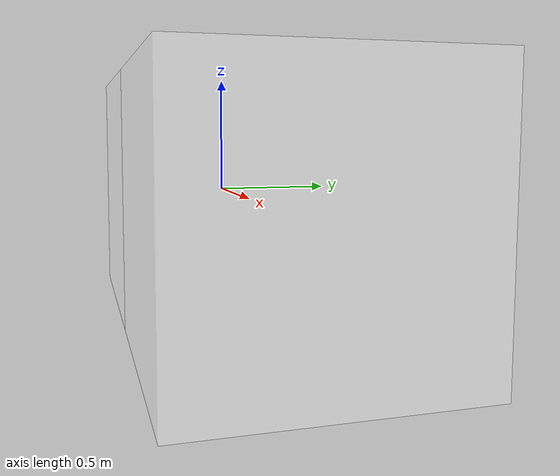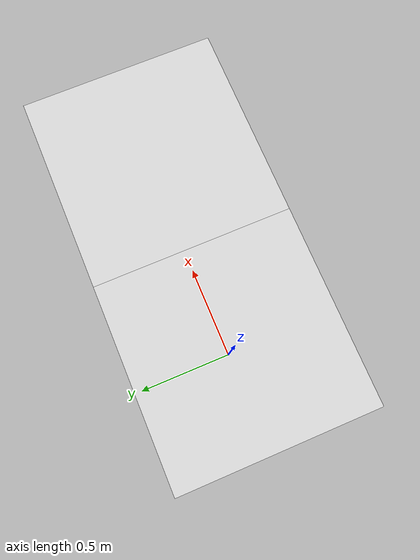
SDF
<?xml version="1.0" encoding="UTF-8"?>
<sdf version="1.6">
    <model name="modelo">
        <link name="main_body">
            <pose>0 0 0 0 -0 0</pose>
            <inertial>
                <mass>1.49981</mass>
                <pose>0 0 0 0 -0 0</pose>
                <inertia>
                    <ixx>0.0478834</ixx>
                    <ixy>0</ixy>
                    <ixz>0</ixz>
                    <iyy>0.0227521</iyy>
                    <iyz>0</iyz>
                    <izz>0.0606231</izz>
                </inertia>
            </inertial>
            <visual name="main_body_visual">
                <pose>0 0 0 0 -0 0</pose>
                <geometry>
                    <box>
                        <size>1 1 1</size>
                    </box>
                </geometry>
                <material>
                    <ambient>1 1 1 0.6 </ambient>
                    <diffuse>1 1 1 0.6 </diffuse>
                    <specular>1 1 1 0.6</specular>
                    <emissive>0 0 0 0</emissive>
                </material>
            </visual>
        </link>
        <link name="main_body2">
            <pose>1 0 0 0 -0 0</pose>
            <inertial>
                <mass>0.0809439719362664</mass>
                <pose>-3.60859273452335E-10 -0.000226380714807978 0.0594780519701684 0 0 0</pose>
                <inertia>
                    <ixx>3.88267747087835E-06</ixx>
                    <ixy>0</ixy>
                    <ixz>0</ixz>
                    <iyy>0.000104858690365283</iyy>
                    <iyz>0</iyz>
                    <izz>8.31755564684115E-05</izz>
                </inertia>
            </inertial>
            <visual name="main_body_visual">
                <pose>0 0 0 0 -0 0</pose>
                <geometry>
                    <box>
                        <size>1 1 1</size>
                    </box>
                </geometry>
                <material>
                    <ambient>1 1 1 0.6 </ambient>
                    <diffuse>1 1 1 0.6 </diffuse>
                    <specular>1 1 1 0.6</specular>
                    <emissive>0 0 0 0</emissive>
                </material>
            </visual>
        </link>
        <joint name="aL" type="revolute">
            <pose>-1 0 0 0 0 0</pose>
            <parent>main_body</parent>
            <child>main_body2</child>
            <axis>
                <xyz>0 1 0</xyz>
                <dynamics>
                    <damping>0.003</damping>
                    <friction>0</friction>
                </dynamics>
            </axis>
        </joint>
        <joint name="fixed to ground" type="fixed">
			  <parent>world</parent>
			  <child>main_body</child>
        </joint>
        <plugin name="dados2" filename=" libgazebo_ros_universaljoint.so">
            <NameOfTopic>dados2</NameOfTopic>
            <NameOfJoint>aL</NameOfJoint>
            <Axis>axis</Axis>
        </plugin>
        <plugin name="elevplugin" filename="libgazebo_servo_teste.so">
            <NameOfJoint>aL</NameOfJoint>
            <Modo>Torque</Modo>
            <TopicSubscriber>juntasub</TopicSubscriber>
            <TopicPublisher>juntapub</TopicPublisher>
            <NameOflinkchild>main_body2</NameOflinkchild>
            <NameOflinkparent>main_body</NameOflinkparent>
        </plugin>
    </model>
</sdf>
